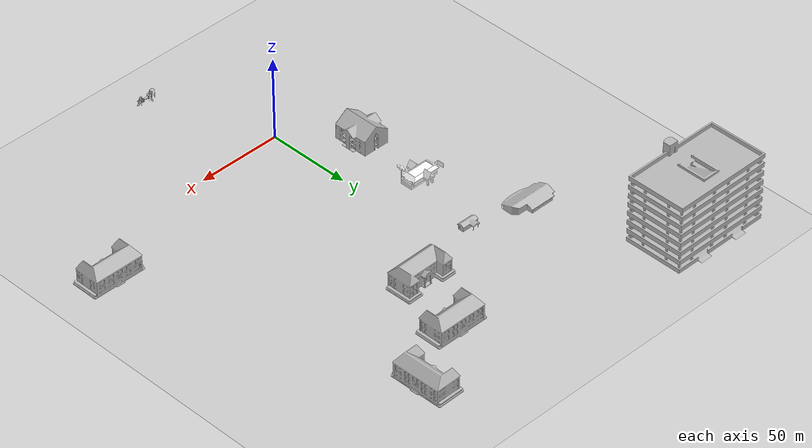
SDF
<sdf version="1.5">
 <world name="default">
  <include>
   <uri>model://sun</uri>
   <pose>0 0 10 0 -0 0</pose>
   <diffuse>0.8 0.8 0.8 1</diffuse>
   <specular>0.2 0.2 0.2 1</specular>
   <attenuation>
    <range>1000</range>
    <constant>0.9</constant>
    <linear>0.01</linear>
    <quadratic>0.001</quadratic>
   </attenuation>
   <direction>-0.5 0.1 -0.9</direction>
  </include>
  <include>
   <uri>model://ground_plane</uri>
   <size>1000000000 1000000000</size>
   <gazebo>
    <link name="link">
     <collision name="collision"><geometry><plane><normal>0 0 1</normal></plane></geometry></collision>
    </link>
   </gazebo>
  </include>
  <model name="plane2">
   <include>
    <uri>model://ground_plane</uri>
    <pose>-98.8749 0.461089 0 0 -0 0</pose>
    <size>1000000000 1000000000</size>
   </include>
  </model>
  <model name="plane3">
   <include>
    <uri>model://ground_plane</uri>
    <pose>99.9199 -0.879955 0 0 -0 0</pose>
    <size>1000000000 1000000000</size>
   </include>
  </model>
  <model name="plane4">
   <include>
    <uri>model://ground_plane</uri>
    <pose>-10.511 97.9734 0 0 -0 0</pose>
    <size>1000000000 1000000000</size>
   </include>
  </model>
  <model name="plane5">
   <include>
    <uri>model://ground_plane</uri>
    <pose>88.6075 85.0506 0 0 -0 0</pose>
    <size>1000000000 1000000000</size>
   </include>
  </model>
  <model name="plane6">
   <include>
    <uri>model://ground_plane</uri>
    <pose>-109.523 99.9567 0 0 -0 0</pose>
    <size>1000000000 1000000000</size>
   </include>
  </model>
  <model name="plane7">
   <include>
    <uri>model://ground_plane</uri>
    <pose>98.7645 -90.4949 0 0 -0 0</pose>
    <size>1000000000 1000000000</size>
   </include>
  </model>
  <model name="plane8">
   <include>
    <uri>model://ground_plane</uri>
    <pose>72.7409 149.441 0 0 -0 0</pose>
    <size>1000000000 1000000000</size>
   </include>
  </model>
  <model name="plane8">
   <include>
    <uri>model://ground_plane</uri>
    <pose>2.59319 -96.1839 0 0 -0 0</pose>
    <size>1000000000 1000000000</size>
   </include>
  </model>
  <model name="plane88">
   <include>
    <uri>model://ground_plane</uri>
    <pose>71.9664 220.953 0 0 -0 0</pose>
    <size>1000000000 1000000000</size>
   </include>
  </model>
  <model name="plane9">
   <include>
    <uri>model://ground_plane</uri>
    <pose>-91.8829 -87.4999 0 0 -0 0</pose>
    <size>1000000000 1000000000</size>
   </include>
  </model>
  <model name="plane99">
   <include>
    <uri>model://ground_plane</uri>
    <pose>70.4227 255.681 0 0 -0 0</pose>
    <size>1000000000 1000000000</size>
   </include>
  </model>
  <model name="plane10">
   <include>
    <uri>model://ground_plane</uri>
    <pose>184.097 91.1615 0 0 -0 0</pose>
    <size>1000000000 1000000000</size>
   </include>
  </model>
  <model name="plane11">
   <include>
    <uri>model://ground_plane</uri>
    <pose>198.928 -4.21041 0 0 -0 0</pose>
    <size>1000000000 1000000000</size>
   </include>
  </model>
  <model name="plane12">
   <include>
    <uri>model://ground_plane</uri>
    <pose>-2.55668 226.224 0 0 -0 0</pose>
    <size>1000000000 1000000000</size>
   </include>
  </model>
  <model name="plane13">
   <include>
    <uri>model://ground_plane</uri>
    <pose>-5.2252 272.758 0 0 -0 0</pose>
    <size>1000000000 1000000000</size>
   </include>
  </model>
  <model name="plane133">
   <include>
    <uri>model://ground_plane</uri>
    <pose>27.1551 -68.8032 0 0 -0 0</pose>
    <size>1000000000 1000000000</size>
   </include>
  </model>
  <model name="plane14">
   <include>
    <uri>model://ground_plane</uri>
    <pose>-5.2252 222.758 0 0 -0 0</pose>
    <size>1000000000 1000000000</size>
   </include>
  </model>
  <model name="plane15">
   <include>
    <uri>model://ground_plane</uri>
    <pose>-23.6963 181.225 0 0 -0 0</pose>
    <size>1000000000 1000000000</size>
   </include>
  </model>
  <model name="apartment1">
   <include><uri>model://apartment</uri><pose>-29.623 32.9731 0 0 -0 0</pose></include>
  </model>
  <model name="playground">
   <include><uri>model://playground</uri><pose>27.1551 -68.8032 0 0 -0 0</pose></include>
  </model>
  <model name="school_0_">
   <include><uri>model://school</uri><pose>80.1207 187.403 0 0 0 -1.55498</pose></include>
  </model>
  <model name="school_1_">
   <include><uri>model://school</uri><pose>39.7721 168.841 0 0 -0 0</pose></include>
  </model>
  <model name="school_3_">
   <include><uri>model://school</uri><pose>132.459 24.6168 0 0 -0 0</pose></include>
  </model>
  <model name="school_5_">
   <include><uri>model://school</uri><pose>26.8301 129.612 0 0 0 -3.12535</pose></include>
  </model>
  <model name="post_office">
   <include><uri>model://post_office</uri><pose>-19.4732 119.011 0 0 -0 0</pose></include>
  </model>
  <model name="fast_food">
   <include><uri>model://fast_food</uri><pose>-29.5417 75.6202 0 0 -0 0</pose></include>
  </model>
  <model name="osrf_first_office">
   <include><uri>model://osrf_first_office</uri><pose>-52.4737 128.772 0 0 -0 0</pose></include>
  </model>
  <model name="parking_garage">
   <include><uri>model://parking_garage</uri><pose>-97.0313 200.194 0 0 -0 0</pose></include>
  </model>
 </world>
</sdf>

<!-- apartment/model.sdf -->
<sdf version="1.6">
  <model name="apartment">
    <static>true</static>
    <link name="link">
      <collision name="collision">
        <geometry>
          <mesh>
            <uri>model://apartment/meshes/apartment.dae</uri>
          </mesh>
        </geometry>
      </collision>
      <visual name="visual">
        <geometry>
          <mesh>
            <uri>model://apartment/meshes/apartment.dae</uri>
          </mesh>
        </geometry>
      </visual>
    </link>
  </model>
</sdf>

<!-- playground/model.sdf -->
<sdf version="1.6">
  <model name="playground">
    <static>true</static>
    <link name="link">
      <collision name="collision">
        <geometry>
          <mesh>
            <uri>model://playground/meshes/playground.dae</uri>
          </mesh>
        </geometry>
      </collision>
      <visual name="visual">
        <geometry>
          <mesh>
            <uri>model://playground/meshes/playground.dae</uri>
          </mesh>
        </geometry>
      </visual>
    </link>
  </model>
</sdf>

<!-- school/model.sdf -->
<sdf version="1.6">
  <model name="school">
    <static>true</static>
    <link name="link">
      <collision name="collision">
        <geometry>
          <mesh>
            <uri>model://school/meshes/school.dae</uri>
          </mesh>
        </geometry>
      </collision>
      <visual name="visual">
        <geometry>
          <mesh>
            <uri>model://school/meshes/school.dae</uri>
          </mesh>
        </geometry>
      </visual>
    </link>
  </model>
</sdf>

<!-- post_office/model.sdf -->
<sdf version="1.6">
  <model name="post_office">
    <static>true</static>
    <link name="link">
      <collision name="collision">
        <geometry>
          <mesh>
            <uri>model://post_office/meshes/post_office.dae</uri>
          </mesh>
        </geometry>
      </collision>
      <visual name="visual">
        <geometry>
          <mesh>
            <uri>model://post_office/meshes/post_office.dae</uri>
          </mesh>
        </geometry>
      </visual>
    </link>
  </model>
</sdf>

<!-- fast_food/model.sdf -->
<sdf version="1.5">
  <model name="Fast Food">
    <static>true</static>
    <link name="link">
      <pose>0 0 3.15931296 0 0 0</pose>
      <collision name="collision">
        <geometry>
          <mesh>
            <scale>3 3 2</scale>
            <uri>model://fast_food/meshes/fast_food.dae</uri>
          </mesh>
        </geometry>
      </collision>
      <visual name="visual">
        <geometry>
          <mesh>
            <scale>3 3 2</scale>
            <uri>model://fast_food/meshes/fast_food.dae</uri>
          </mesh>
        </geometry>
        <material>
          <script>
            <uri>model://fast_food/materials/scripts</uri>
            <uri>model://fast_food/materials/textures</uri>
            <name>FastFood/Diffuse</name>
          </script>
          <shader type="normal_map_tangent_space">
            <normal_map>FastFood_Normal.png</normal_map>
          </shader>
        </material>
      </visual>
    </link>
  </model>
</sdf>

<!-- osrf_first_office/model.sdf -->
<sdf version="1.6">
  <model name="osrf_first_office">
    <static>true</static>
    <link name="link">
      <collision name="collision">
        <geometry>
          <mesh>
            <uri>model://osrf_first_office/meshes/osrf_first_office.dae</uri>
          </mesh>
        </geometry>
      </collision>
      <visual name="visual">
        <geometry>
          <mesh>
            <uri>model://osrf_first_office/meshes/osrf_first_office.dae</uri>
          </mesh>
        </geometry>
      </visual>
    </link>
  </model>
</sdf>

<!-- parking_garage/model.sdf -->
<sdf version="1.6">
  <model name="parking_garage">
    <static>true</static>
    <link name="link">
      <collision name="collision">
        <geometry>
          <mesh>
            <uri>model://parking_garage/meshes/parking_garage.dae</uri>
          </mesh>
        </geometry>
      </collision>
      <visual name="visual">
        <geometry>
          <mesh>
            <uri>model://parking_garage/meshes/parking_garage.dae</uri>
          </mesh>
        </geometry>
      </visual>
    </link>
  </model>
</sdf>
